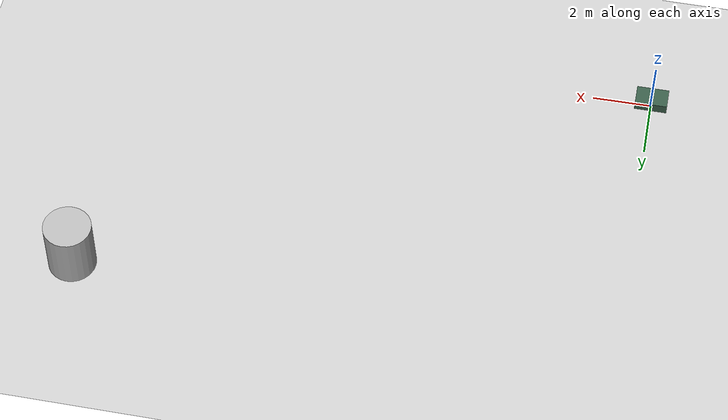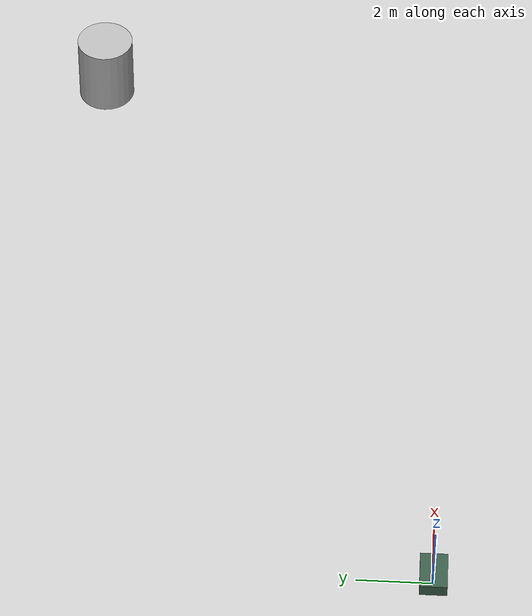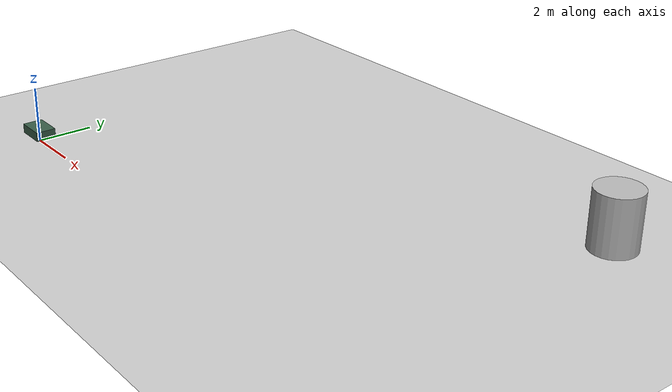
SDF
<?xml version="1.0" ?>
<sdf version="1.9">
  <world name="contested_plains">
    <gravity>0 0 -9.8</gravity>
    <include>
      <uri>https://fuel.gazebosim.org/1.0/OpenRobotics/models/Ground Plane</uri>
    </include>
    <include>
      <uri>https://fuel.gazebosim.org/1.0/OpenRobotics/models/Sun</uri>
    </include>
    <model name="fireant_spawn_anchor">
      <include>
        <uri>model://fireant-ugv</uri>
      </include>
      <pose>0 0 0 0 0 0</pose>
    </model>
    <model name="ew_jammer">
      <pose>18 10 1 0 0 0</pose>
      <link name="mast">
        <collision name="collision">
          <geometry>
            <cylinder>
              <radius>0.8</radius>
              <length>2.0</length>
            </cylinder>
          </geometry>
        </collision>
        <visual name="visual">
          <geometry>
            <cylinder>
              <radius>0.8</radius>
              <length>2.0</length>
            </cylinder>
          </geometry>
        </visual>
      </link>
    </model>
    <plugin name="ew_jamming_profile" filename="libignition-gazebo-system.so">
      <jammer_power_dbm>32</jammer_power_dbm>
      <sweep_period_s>5</sweep_period_s>
      <mesh_packet_loss_pct>18</mesh_packet_loss_pct>
    </plugin>
  </world>
</sdf>

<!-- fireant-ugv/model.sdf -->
<sdf version="1.9">
  <model name="fireant_ugv">
    <pose>0 0 0.22 0 0 0</pose>
    <static>false</static>
    <self_collide>false</self_collide>

    <link name="chassis">
      <pose>0 0 0 0 0 0</pose>
      <inertial>
        <mass>42.0</mass>
        <inertia>
          <ixx>3.4</ixx>
          <iyy>5.2</iyy>
          <izz>6.8</izz>
          <ixy>0.0</ixy>
          <ixz>0.0</ixz>
          <iyz>0.0</iyz>
        </inertia>
      </inertial>
      <collision name="chassis_collision">
        <geometry>
          <box>
            <size>1.1 0.72 0.34</size>
          </box>
        </geometry>
      </collision>
      <visual name="chassis_visual">
        <geometry>
          <mesh>
            <uri>model://fireant-ugv/meshes/fireant_chassis.obj</uri>
          </mesh>
        </geometry>
        <material>
          <ambient>0.12 0.24 0.18 1</ambient>
          <diffuse>0.22 0.36 0.28 1</diffuse>
        </material>
      </visual>
      <sensor name="front_lidar" type="gpu_lidar">
        <pose>0.45 0 0.18 0 0 0</pose>
        <topic>/fireant/lidar</topic>
        <ray>
          <scan>
            <horizontal>
              <samples>720</samples>
              <min_angle>-1.57</min_angle>
              <max_angle>1.57</max_angle>
            </horizontal>
          </scan>
          <range>
            <min>0.2</min>
            <max>60</max>
            <resolution>0.01</resolution>
          </range>
        </ray>
      </sensor>
      <sensor name="imu" type="imu">
        <topic>/fireant/imu</topic>
      </sensor>
      <sensor name="front_camera" type="camera">
        <pose>0.36 0 0.22 0 0 0</pose>
        <camera>
          <horizontal_fov>1.12</horizontal_fov>
          <image>
            <width>1280</width>
            <height>720</height>
            <format>R8G8B8</format>
          </image>
        </camera>
      </sensor>
    </link>
  </model>
</sdf>
